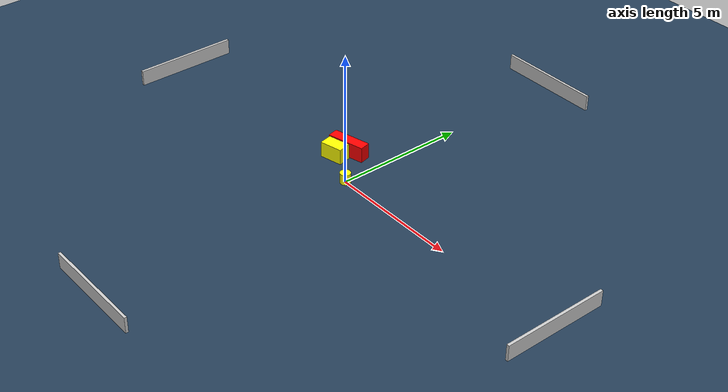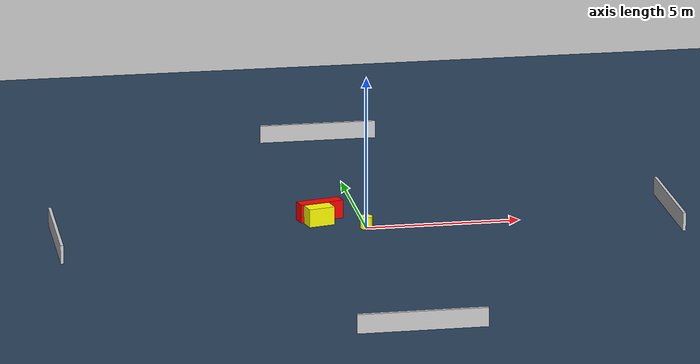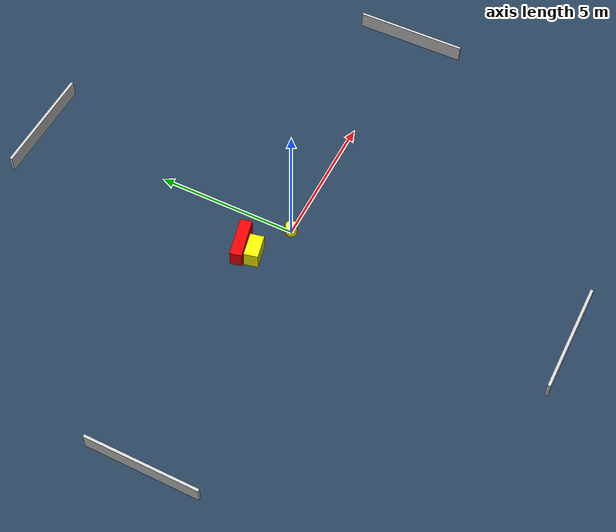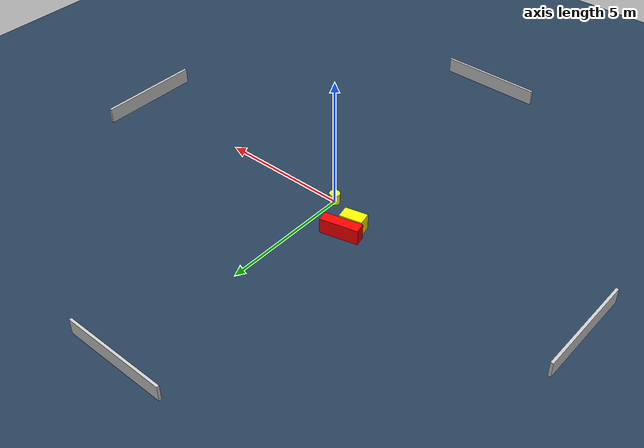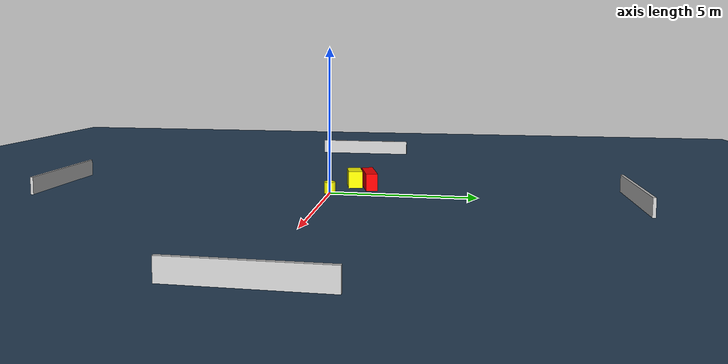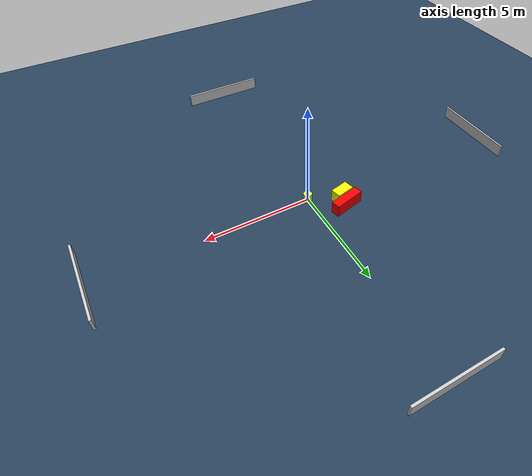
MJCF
<?xml version="1.0" ?>
<mujoco model="generated_environment">
  <option timestep="0.01" integrator="RK4" cone="elliptic"/>
  <default>
    <geom density="1"/>
  </default>
  <asset>
    <texture builtin="gradient" height="3072" name="skybox" rgb1="0.3 0.5 0.7" rgb2="0 0 0" type="skybox" width="512"/>
    <texture builtin="checker" height="300" name="groundplane" rgb1="0.2 0.3 0.4" rgb2="0.1 0.2 0.3" type="2d" width="300"/>
    <material name="groundplane" reflectance="0.2" texrepeat="5 5" texture="groundplane"/>
  </asset>
  <worldbody>
    <light dir="0 0 -1" directional="true" pos="0 0 1.5"/>
    <geom condim="3" friction="0.5 0.005 0.001" material="groundplane" name="floor" pos="0 0 0" size="0 0 0.05" type="plane"/>
    <body name="walls">
      <geom name="wall_1" condim="4" pos="-10.0 0.0 0.3" rgba="0.800000011920929 0.800000011920929 0.800000011920929 1.0" size="0.05 2.0 0.3" type="box"/>
      <geom name="wall_2" condim="4" pos="10.0 0.0 0.3" rgba="0.800000011920929 0.800000011920929 0.800000011920929 1.0" size="0.05 2.0 0.3" type="box"/>
      <geom name="wall_3" condim="4" pos="0.0 -10.0 0.3" rgba="0.800000011920929 0.800000011920929 0.800000011920929 1.0" size="2.0 0.05 0.3" type="box"/>
      <geom name="wall_4" condim="4" pos="0.0 10.0 0.3" rgba="0.800000011920929 0.800000011920929 0.800000011920929 1.0" size="2.0 0.05 0.3" type="box"/>
    </body>
    <body name="robot">
      <joint name="joint_x" type="slide" pos="0 0 0" axis="1 0 0"/>
      <joint name="joint_y" type="slide" pos="0 0 0" axis="0 1 0"/>
      <geom name="robot" type="cylinder" pos="0.0 0.0 0.2" size="0.2 0.2 0.0" mass="5.0" friction="1.0 0.005 0.0001" condim="4" rgba="1.0 1.0 0.0 1.0"/>
    </body>
    <body name="obstacle_1_movable">
      <geom name="obstacle_1_movable" condim="4" pos="-1.4273410879601294 0.6746299573047887 0.3" euler="0 0 282.81713048994766" friction="0.0 0.005 0.001" rgba="1.0 1.0 0.0 1.0" size="0.2474073795279677 0.43560143296300313 0.3" type="box" mass="0.1"/>
      <joint type="free"/>
    </body>
    <body name="obstacle_2_static">
      <geom name="obstacle_2_static" condim="4" pos="-1.3280437433416348 1.2213754994910564 0.3" euler="0 0 103.53227024375738" friction="0.0 0.005 0.001" rgba="1.0 0.0 0.0 1.0" size="0.20729637518614485 0.7302183918733549 0.3" type="box"/>
    </body>
  </worldbody>
  <actuator>
    <motor name="actuator_x" joint="joint_x" gear="1" ctrlrange="-1 1"/>
    <motor name="actuator_y" joint="joint_y" gear="1" ctrlrange="-1 1"/>
  </actuator>
</mujoco>
